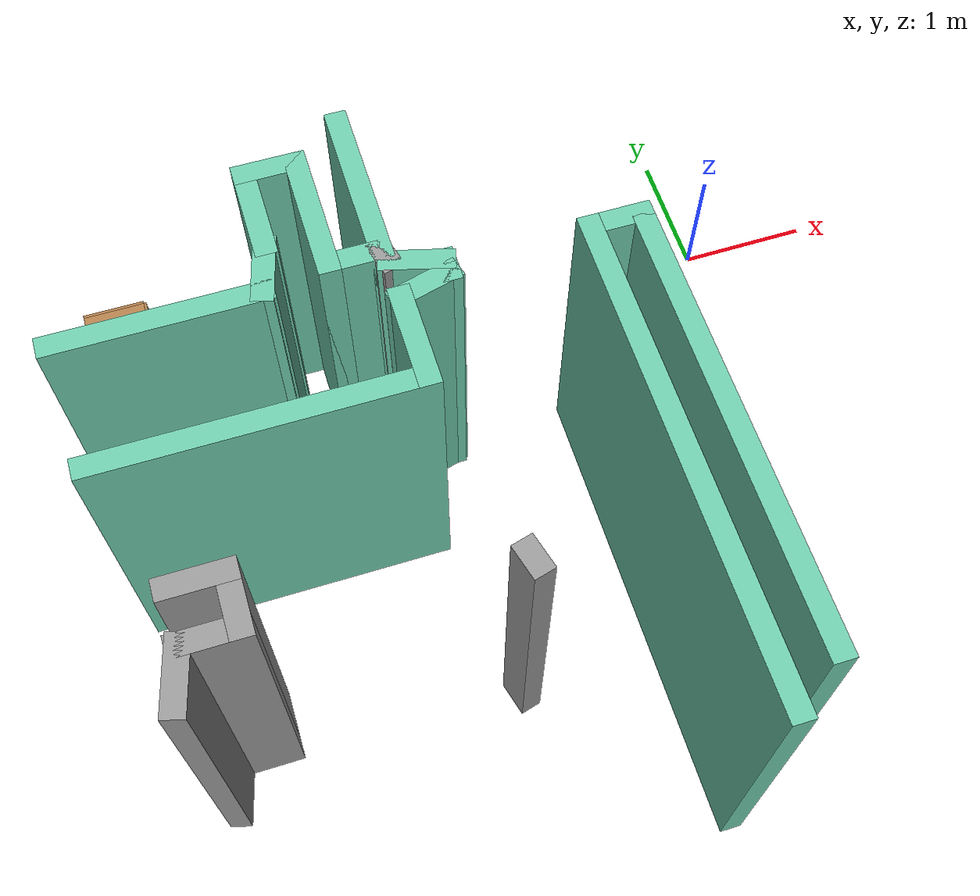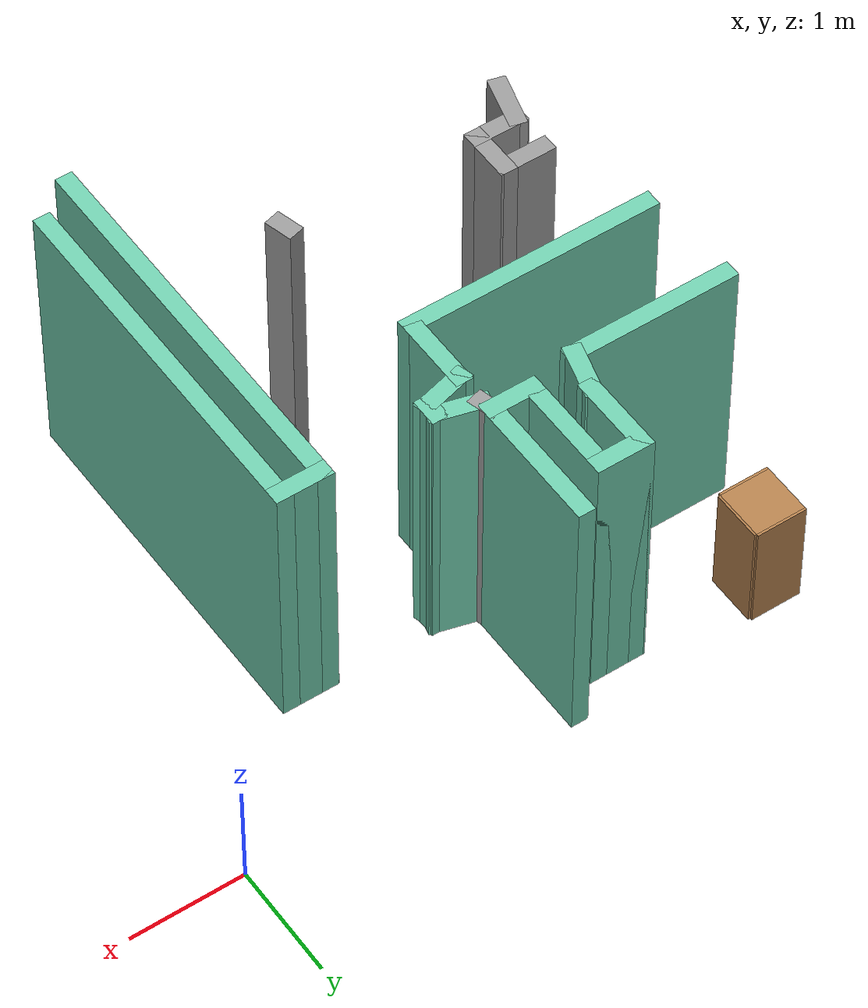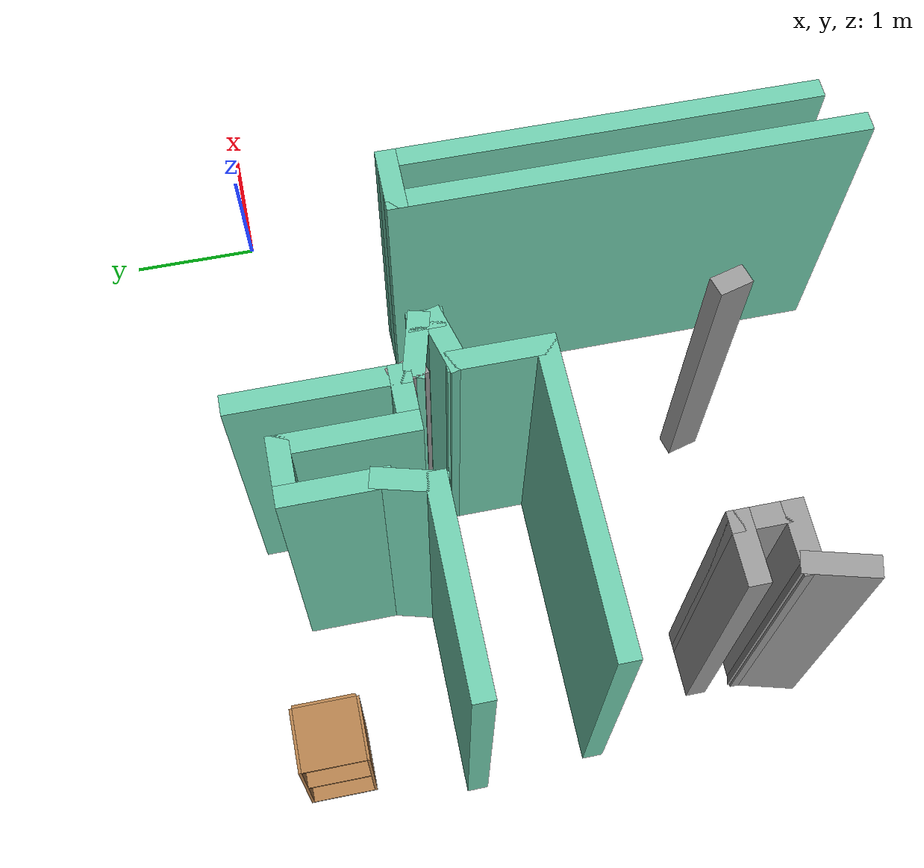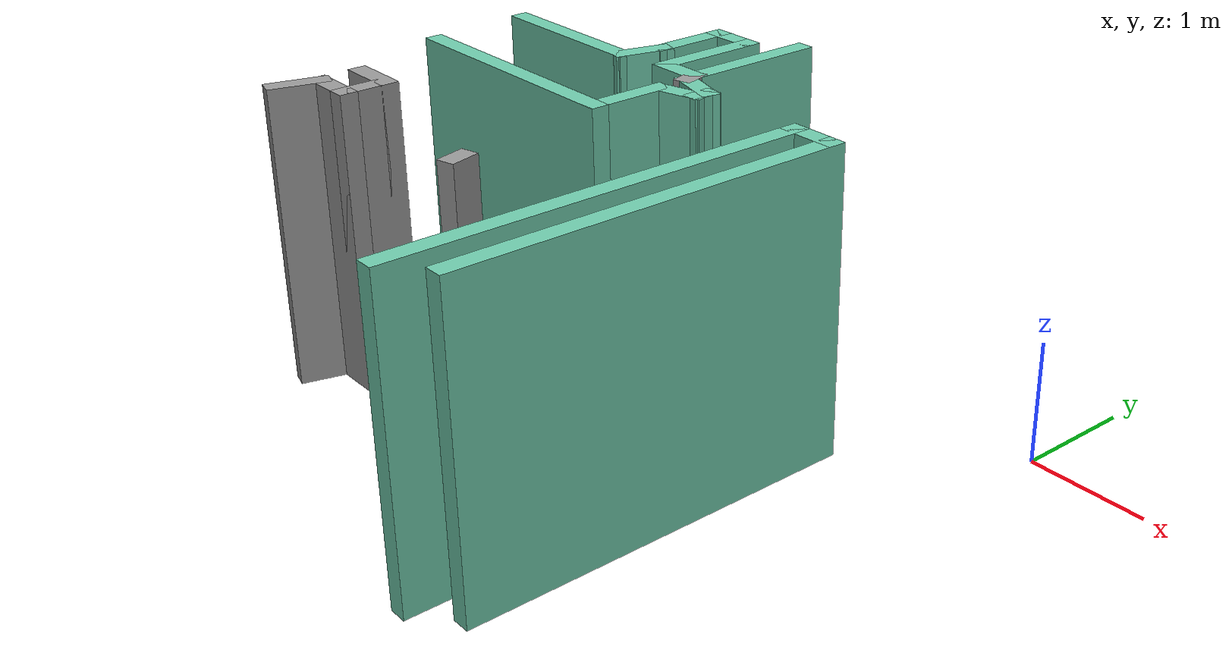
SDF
<sdf version="1.6">
 <world name="default">
  <model name="map_3">
   <pose>0.639107 -0.355311 0 0 -0 0</pose>
   <link name="Wall_132">
    <collision name="Wall_132_Collision">
     <geometry><box><size>0.25 0.15 2.5</size></box></geometry>
     <pose>0 0 1.25 0 -0 0</pose>
    </collision>
    <visual name="Wall_132_Visual">
     <pose>0 0 1.25 0 -0 0</pose>
     <geometry><box><size>0.25 0.15 2.5</size></box></geometry>
     <material>
      <script><uri>file://media/materials/scripts/gazebo.material</uri><name>Gazebo/Grey</name></script>
      <ambient>1 1 1 1</ambient>
     </material>
     <meta><layer>0</layer></meta>
    </visual>
    <pose>-3.17598 -2.85511 0 0 -0 -1.309</pose>
   </link>
   <link name="Wall_138">
    <collision name="Wall_138_Collision">
     <geometry><box><size>0.5 0.15 2.5</size></box></geometry>
     <pose>0 0 1.25 0 -0 0</pose>
    </collision>
    <visual name="Wall_138_Visual">
     <pose>0 0 1.25 0 -0 0</pose>
     <geometry><box><size>0.5 0.15 2.5</size></box></geometry>
     <material>
      <script><uri>file://media/materials/scripts/gazebo.material</uri><name>Gazebo/Grey</name></script>
      <ambient>1 1 1 1</ambient>
     </material>
     <meta><layer>0</layer></meta>
    </visual>
    <pose>-5.02718 -2.4211 0 0 -0 0</pose>
   </link>
   <link name="Wall_139">
    <collision name="Wall_139_Collision">
     <geometry><box><size>0.5 0.15 2.5</size></box></geometry>
     <pose>0 0 1.25 0 -0 0</pose>
    </collision>
    <visual name="Wall_139_Visual">
     <pose>0 0 1.25 0 -0 0</pose>
     <geometry><box><size>0.5 0.15 2.5</size></box></geometry>
     <material>
      <script><uri>file://media/materials/scripts/gazebo.material</uri><name>Gazebo/Grey</name></script>
      <ambient>1 1 1 1</ambient>
     </material>
     <meta><layer>0</layer></meta>
    </visual>
    <pose>-4.85218 -2.5961 0 0 -0 -1.5708</pose>
   </link>
   <link name="Wall_140">
    <collision name="Wall_140_Collision">
     <geometry><box><size>0.5 0.15 2.5</size></box></geometry>
     <pose>0 0 1.25 0 -0 0</pose>
    </collision>
    <visual name="Wall_140_Visual">
     <pose>0 0 1.25 0 -0 0</pose>
     <geometry><box><size>0.5 0.15 2.5</size></box></geometry>
     <material>
      <script><uri>file://media/materials/scripts/gazebo.material</uri><name>Gazebo/Grey</name></script>
      <ambient>1 1 1 1</ambient>
     </material>
     <meta><layer>0</layer></meta>
    </visual>
    <pose>-5.02718 -2.7711 0 0 -0 3.14159</pose>
   </link>
   <link name="Wall_141">
    <collision name="Wall_141_Collision">
     <geometry><box><size>0.5 0.15 2.5</size></box></geometry>
     <pose>0 0 1.25 0 -0 0</pose>
    </collision>
    <visual name="Wall_141_Visual">
     <pose>0 0 1.25 0 -0 0</pose>
     <geometry><box><size>0.5 0.15 2.5</size></box></geometry>
     <material>
      <script><uri>file://media/materials/scripts/gazebo.material</uri><name>Gazebo/Grey</name></script>
      <ambient>1 1 1 1</ambient>
     </material>
     <meta><layer>0</layer></meta>
    </visual>
    <pose>-5.24747 -2.94014 0 0 -0 -1.8326</pose>
   </link>
   <link name="Wall_44">
    <collision name="Wall_44_Collision">
     <geometry><box><size>1.5 0.15 2.5</size></box></geometry>
     <pose>0 0 1.25 0 -0 0</pose>
    </collision>
    <visual name="Wall_44_Visual">
     <pose>0 0 1.25 0 -0 0</pose>
     <geometry><box><size>1.5 0.15 2.5</size></box></geometry>
     <material>
      <script><uri>file://media/materials/scripts/gazebo.material</uri><name>Gazebo/Grey</name></script>
      <ambient>0.435294 0.796078 0.67451 1</ambient>
     </material>
     <meta><layer>0</layer></meta>
    </visual>
    <pose>-4.90126 -0.644314 0 0 -0 0</pose>
   </link>
   <link name="Wall_45">
    <collision name="Wall_45_Collision">
     <geometry><box><size>0.5 0.15 2.5</size></box></geometry>
     <pose>0 0 1.25 0 -0 0</pose>
    </collision>
    <visual name="Wall_45_Visual">
     <pose>0 0 1.25 0 -0 0</pose>
     <geometry><box><size>0.5 0.15 2.5</size></box></geometry>
     <material>
      <script><uri>file://media/materials/scripts/gazebo.material</uri><name>Gazebo/Grey</name></script>
      <ambient>0.435294 0.796078 0.67451 1</ambient>
     </material>
     <meta><layer>0</layer></meta>
    </visual>
    <pose>-4.18097 -0.475277 0 0 -0 1.309</pose>
   </link>
   <link name="Wall_46">
    <collision name="Wall_46_Collision">
     <geometry><box><size>0.75 0.15 2.5</size></box></geometry>
     <pose>0 0 1.25 0 -0 0</pose>
    </collision>
    <visual name="Wall_46_Visual">
     <pose>0 0 1.25 0 -0 0</pose>
     <geometry><box><size>0.75 0.15 2.5</size></box></geometry>
     <material>
      <script><uri>file://media/materials/scripts/gazebo.material</uri><name>Gazebo/Grey</name></script>
      <ambient>0.435294 0.796078 0.67451 1</ambient>
     </material>
     <meta><layer>0</layer></meta>
    </visual>
    <pose>-4.13568 -0.00624 0 0 -0 1.5708</pose>
   </link>
   <link name="Wall_47">
    <collision name="Wall_47_Collision">
     <geometry><box><size>0.5 0.15 2.5</size></box></geometry>
     <pose>0 0 1.25 0 -0 0</pose>
    </collision>
    <visual name="Wall_47_Visual">
     <pose>0 0 1.25 0 -0 0</pose>
     <geometry><box><size>0.5 0.15 2.5</size></box></geometry>
     <material>
      <script><uri>file://media/materials/scripts/gazebo.material</uri><name>Gazebo/Grey</name></script>
      <ambient>0.435294 0.796078 0.67451 1</ambient>
     </material>
     <meta><layer>0</layer></meta>
    </visual>
    <pose>-3.96068 0.29376 0 0 -0 0</pose>
   </link>
   <link name="Wall_48">
    <collision name="Wall_48_Collision">
     <geometry><box><size>1 0.15 2.5</size></box></geometry>
     <pose>0 0 1.25 0 -0 0</pose>
    </collision>
    <visual name="Wall_48_Visual">
     <pose>0 0 1.25 0 -0 0</pose>
     <geometry><box><size>1 0.15 2.5</size></box></geometry>
     <material>
      <script><uri>file://media/materials/scripts/gazebo.material</uri><name>Gazebo/Grey</name></script>
      <ambient>0.435294 0.796078 0.67451 1</ambient>
     </material>
     <meta><layer>0</layer></meta>
    </visual>
    <pose>-3.78568 -0.13124 0 0 -0 -1.5708</pose>
   </link>
   <link name="Wall_49">
    <collision name="Wall_49_Collision">
     <geometry><box><size>0.5 0.15 2.5</size></box></geometry>
     <pose>0 0 1.25 0 -0 0</pose>
    </collision>
    <visual name="Wall_49_Visual">
     <pose>0 0 1.25 0 -0 0</pose>
     <geometry><box><size>0.5 0.15 2.5</size></box></geometry>
     <material>
      <script><uri>file://media/materials/scripts/gazebo.material</uri><name>Gazebo/Grey</name></script>
      <ambient>0.435294 0.796078 0.67451 1</ambient>
     </material>
     <meta><layer>0</layer></meta>
    </visual>
    <pose>-3.61068 -0.55624 0 0 -0 0</pose>
   </link>
   <link name="Wall_50">
    <collision name="Wall_50_Collision">
     <geometry><box><size>1.25 0.15 2.5</size></box></geometry>
     <pose>0 0 1.25 0 -0 0</pose>
    </collision>
    <visual name="Wall_50_Visual">
     <pose>0 0 1.25 0 -0 0</pose>
     <geometry><box><size>1.25 0.15 2.5</size></box></geometry>
     <material>
      <script><uri>file://media/materials/scripts/gazebo.material</uri><name>Gazebo/Grey</name></script>
      <ambient>0.435294 0.796078 0.67451 1</ambient>
     </material>
     <meta><layer>0</layer></meta>
    </visual>
    <pose>-3.43568 -0.00624 0 0 -0 1.5708</pose>
   </link>
   <link name="Wall_54">
    <collision name="Wall_54_Collision">
     <geometry><box><size>0.25 0.15 2.5</size></box></geometry>
     <pose>0 0 1.25 0 -0 0</pose>
    </collision>
    <visual name="Wall_54_Visual">
     <pose>0 0 1.25 0 -0 0</pose>
     <geometry><box><size>0.25 0.15 2.5</size></box></geometry>
     <material>
      <script><uri>file://media/materials/scripts/gazebo.material</uri><name>Gazebo/Grey</name></script>
      <ambient>1 1 1 1</ambient>
     </material>
     <meta><layer>0</layer></meta>
    </visual>
    <pose>-3.42273 -0.604536 0 0 -0 -1.309</pose>
   </link>
   <link name="Wall_55">
    <collision name="Wall_55_Collision">
     <geometry><box><size>0.5 0.15 2.5</size></box></geometry>
     <pose>0 0 1.25 0 -0 0</pose>
    </collision>
    <visual name="Wall_55_Visual">
     <pose>0 0 1.25 0 -0 0</pose>
     <geometry><box><size>0.5 0.15 2.5</size></box></geometry>
     <material>
      <script><uri>file://media/materials/scripts/gazebo.material</uri><name>Gazebo/Grey</name></script>
      <ambient>0.435294 0.796078 0.67451 1</ambient>
     </material>
     <meta><layer>0</layer></meta>
    </visual>
    <pose>-3.24076 -0.698126 0 0 -0 -0.261799</pose>
   </link>
   <link name="Wall_56">
    <collision name="Wall_56_Collision">
     <geometry><box><size>0.25 0.15 2.5</size></box></geometry>
     <pose>0 0 1.25 0 -0 0</pose>
    </collision>
    <visual name="Wall_56_Visual">
     <pose>0 0 1.25 0 -0 0</pose>
     <geometry><box><size>0.25 0.15 2.5</size></box></geometry>
     <material>
      <script><uri>file://media/materials/scripts/gazebo.material</uri><name>Gazebo/Grey</name></script>
      <ambient>0.435294 0.796078 0.67451 1</ambient>
     </material>
     <meta><layer>0</layer></meta>
    </visual>
    <pose>-3.07172 -0.793419 0 0 -0 -1.5708</pose>
   </link>
   <link name="Wall_57">
    <collision name="Wall_57_Collision">
     <geometry><box><size>0.5 0.15 2.5</size></box></geometry>
     <pose>0 0 1.25 0 -0 0</pose>
    </collision>
    <visual name="Wall_57_Visual">
     <pose>0 0 1.25 0 -0 0</pose>
     <geometry><box><size>0.5 0.15 2.5</size></box></geometry>
     <material>
      <script><uri>file://media/materials/scripts/gazebo.material</uri><name>Gazebo/Grey</name></script>
      <ambient>0.435294 0.796078 0.67451 1</ambient>
     </material>
     <meta><layer>0</layer></meta>
    </visual>
    <pose>-3.24076 -0.888712 0 0 -0 -2.87979</pose>
   </link>
   <link name="Wall_58">
    <collision name="Wall_58_Collision">
     <geometry><box><size>0.75 0.15 2.5</size></box></geometry>
     <pose>0 0 1.25 0 -0 0</pose>
    </collision>
    <visual name="Wall_58_Visual">
     <pose>0 0 1.25 0 -0 0</pose>
     <geometry><box><size>0.75 0.15 2.5</size></box></geometry>
     <material>
      <script><uri>file://media/materials/scripts/gazebo.material</uri><name>Gazebo/Grey</name></script>
      <ambient>0.435294 0.796078 0.67451 1</ambient>
     </material>
     <meta><layer>0</layer></meta>
    </visual>
    <pose>-3.40979 -1.23401 0 0 -0 -1.5708</pose>
   </link>
   <link name="Wall_59">
    <collision name="Wall_59_Collision">
     <geometry><box><size>2.25 0.15 2.5</size></box></geometry>
     <pose>0 0 1.25 0 -0 0</pose>
    </collision>
    <visual name="Wall_59_Visual">
     <pose>0 0 1.25 0 -0 0</pose>
     <geometry><box><size>2.25 0.15 2.5</size></box></geometry>
     <material>
      <script><uri>file://media/materials/scripts/gazebo.material</uri><name>Gazebo/Grey</name></script>
      <ambient>0.435294 0.796078 0.67451 1</ambient>
     </material>
     <meta><layer>0</layer></meta>
    </visual>
    <pose>-4.45979 -1.53401 0 0 -0 3.14159</pose>
   </link>
   <link name="Wall_68">
    <collision name="Wall_68_Collision">
     <geometry><box><size>3.5 0.15 2.5</size></box></geometry>
     <pose>0 0 1.25 0 -0 0</pose>
    </collision>
    <visual name="Wall_68_Visual">
     <pose>0 0 1.25 0 -0 0</pose>
     <geometry><box><size>3.5 0.15 2.5</size></box></geometry>
     <material>
      <script><uri>file://media/materials/scripts/gazebo.material</uri><name>Gazebo/Grey</name></script>
      <ambient>0.435294 0.796078 0.67451 1</ambient>
     </material>
     <meta><layer>0</layer></meta>
    </visual>
    <pose>-2.09727 -2.44593 0 0 -0 1.5708</pose>
   </link>
   <link name="Wall_69">
    <collision name="Wall_69_Collision">
     <geometry><box><size>0.5 0.15 2.5</size></box></geometry>
     <pose>0 0 1.25 0 -0 0</pose>
    </collision>
    <visual name="Wall_69_Visual">
     <pose>0 0 1.25 0 -0 0</pose>
     <geometry><box><size>0.5 0.15 2.5</size></box></geometry>
     <material>
      <script><uri>file://media/materials/scripts/gazebo.material</uri><name>Gazebo/Grey</name></script>
      <ambient>0.435294 0.796078 0.67451 1</ambient>
     </material>
     <meta><layer>0</layer></meta>
    </visual>
    <pose>-1.92227 -0.770932 0 0 -0 0</pose>
   </link>
   <link name="Wall_70">
    <collision name="Wall_70_Collision">
     <geometry><box><size>3.25 0.15 2.5</size></box></geometry>
     <pose>0 0 1.25 0 -0 0</pose>
    </collision>
    <visual name="Wall_70_Visual">
     <pose>0 0 1.25 0 -0 0</pose>
     <geometry><box><size>3.25 0.15 2.5</size></box></geometry>
     <material>
      <script><uri>file://media/materials/scripts/gazebo.material</uri><name>Gazebo/Grey</name></script>
      <ambient>0.435294 0.796078 0.67451 1</ambient>
     </material>
     <meta><layer>0</layer></meta>
    </visual>
    <pose>-1.74727 -2.32093 0 0 -0 -1.5708</pose>
   </link>
   <static>1</static>
  </model>
  <model name="cabinet_1">
   <static>1</static>
   <link name="cabinet_bottom_plate">
    <inertial>
     <pose>0 0 -1 0 -0 0</pose>
     <inertia><ixx>2.05</ixx><ixy>0</ixy><ixz>0</ixz><iyy>2.05</iyy><iyz>0</iyz><izz>2.05</izz></inertia>
     <mass>25</mass>
    </inertial>
    <collision name="cabinet_bottom_plate_geom">
     <pose>0 0 0.01 0 -0 0</pose>
     <geometry><box><size>0.45 0.45 0.02</size></box></geometry>
    </collision>
    <visual name="cabinet_bottom_plate_geom_visual">
     <pose>0 0 0.01 0 -0 0</pose>
     <geometry><box><size>0.45 0.45 0.02</size></box></geometry>
     <material>
      <script><uri>file://media/materials/scripts/gazebo.material</uri><name>Gazebo/Wood</name></script>
     </material>
    </visual>
    <collision name="cabinet_bottom_plate_geom_cabinet_back_plate">
     <pose>0.235 0 0.51 0 -0 0</pose>
     <geometry><box><size>0.02 0.45 1.02</size></box></geometry>
    </collision>
    <visual name="cabinet_bottom_plate_geom_cabinet_back_plate_visual">
     <pose>0.235 0 0.51 0 -0 0</pose>
     <geometry><box><size>0.02 0.45 1.02</size></box></geometry>
     <material>
      <script><uri>file://media/materials/scripts/gazebo.material</uri><name>Gazebo/Wood</name></script>
     </material>
    </visual>
    <collision name="cabinet_bottom_plate_geom_cabinet_left_plate">
     <pose>0 0.235 0.51 0 -0 0</pose>
     <geometry><box><size>0.45 0.02 1.02</size></box></geometry>
    </collision>
    <visual name="cabinet_bottom_plate_geom_cabinet_left_plate_visual">
     <pose>0 0.235 0.51 0 -0 0</pose>
     <geometry><box><size>0.45 0.02 1.02</size></box></geometry>
     <material>
      <script><uri>file://media/materials/scripts/gazebo.material</uri><name>Gazebo/Wood</name></script>
     </material>
    </visual>
    <collision name="cabinet_bottom_plate_geom_cabinet_middle_plate">
     <pose>0 0 0.51 0 -0 0</pose>
     <geometry><box><size>0.45 0.45 0.02</size></box></geometry>
    </collision>
    <visual name="cabinet_bottom_plate_geom_cabinet_middle_plate_visual">
     <pose>0 0 0.51 0 -0 0</pose>
     <geometry><box><size>0.45 0.45 0.02</size></box></geometry>
     <material>
      <script><uri>file://media/materials/scripts/gazebo.material</uri><name>Gazebo/Wood</name></script>
     </material>
    </visual>
    <collision name="cabinet_bottom_plate_geom_cabinet_right_plate">
     <pose>0 -0.235 0.51 0 -0 0</pose>
     <geometry><box><size>0.45 0.02 1.02</size></box></geometry>
    </collision>
    <visual name="cabinet_bottom_plate_geom_cabinet_right_plate_visual">
     <pose>0 -0.235 0.51 0 -0 0</pose>
     <geometry><box><size>0.45 0.02 1.02</size></box></geometry>
     <material>
      <script><uri>file://media/materials/scripts/gazebo.material</uri><name>Gazebo/Wood</name></script>
     </material>
    </visual>
    <collision name="cabinet_bottom_plate_geom_cabinet_top_plate">
     <pose>0 0 1.01 0 -0 0</pose>
     <geometry><box><size>0.45 0.45 0.02</size></box></geometry>
    </collision>
    <visual name="cabinet_bottom_plate_geom_cabinet_top_plate_visual">
     <pose>0 0 1.01 0 -0 0</pose>
     <geometry><box><size>0.45 0.45 0.02</size></box></geometry>
     <material>
      <script><uri>file://media/materials/scripts/gazebo.material</uri><name>Gazebo/Wood</name></script>
     </material>
    </visual>
   </link>
   <pose>-4.64684 -0.026596 0 0 -0 0</pose>
  </model>
 </world>
</sdf>
